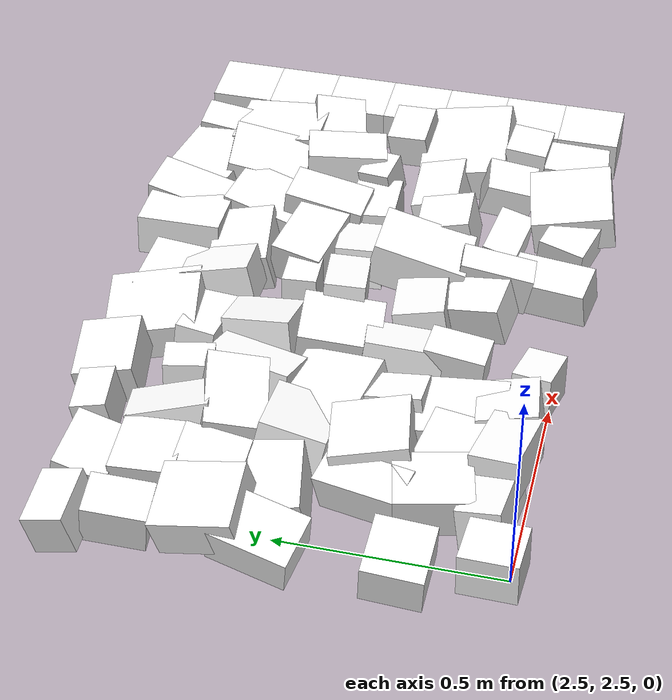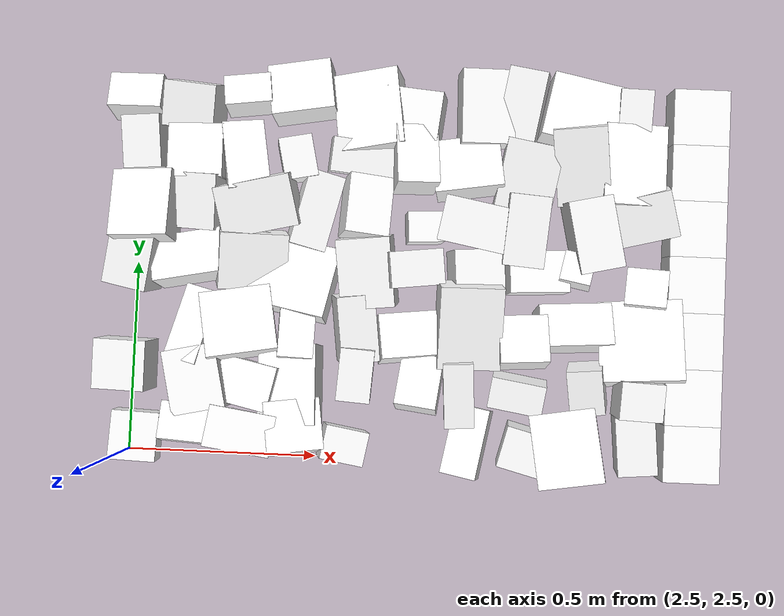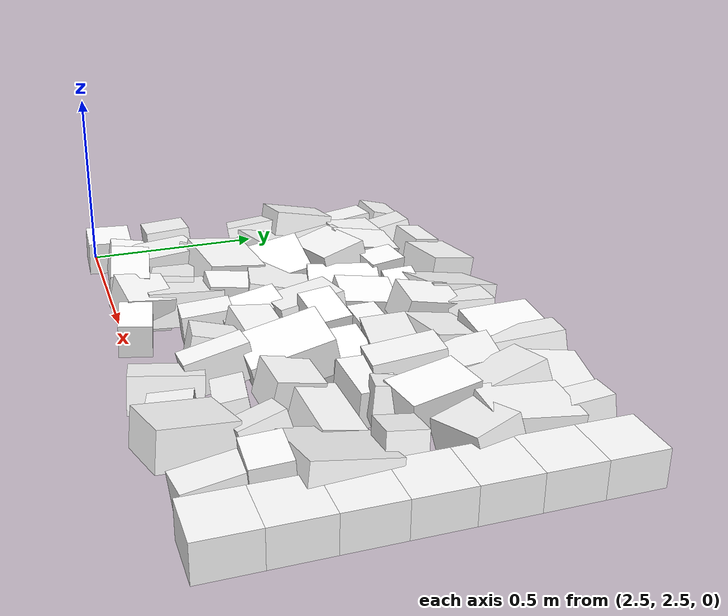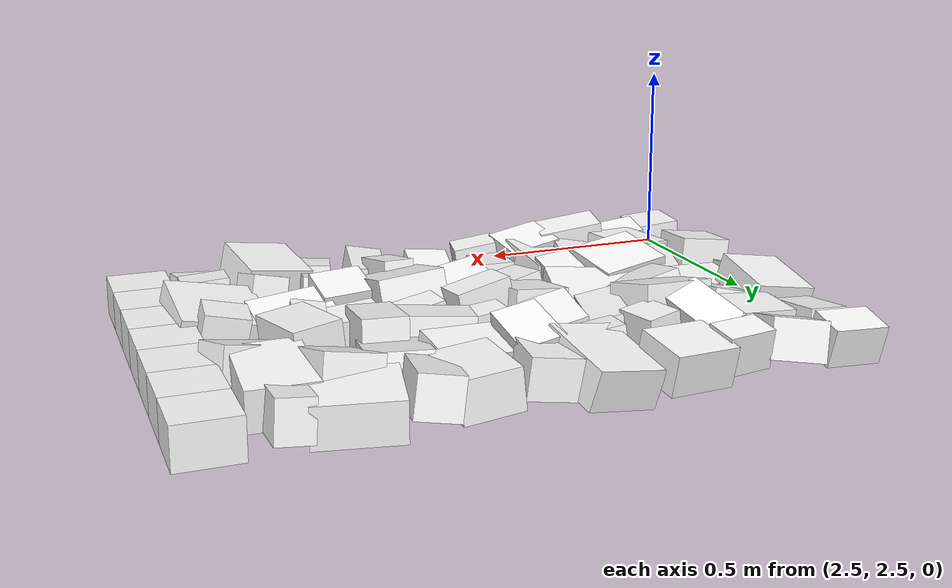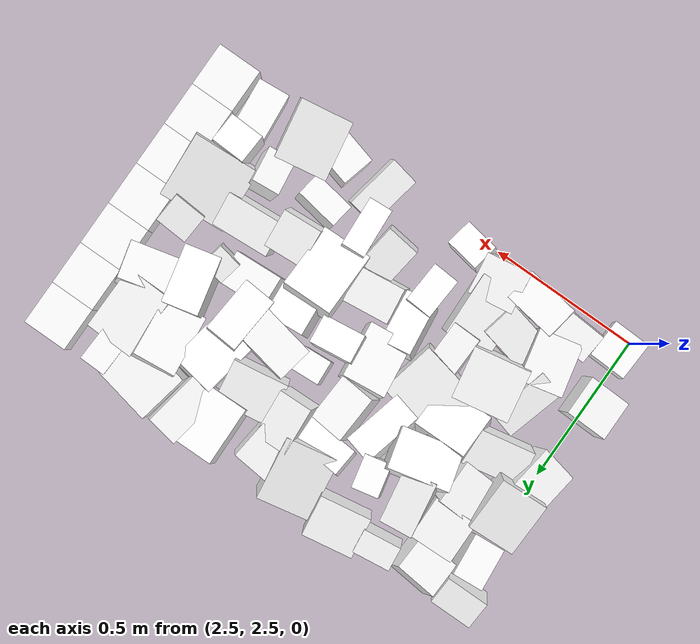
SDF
<sdf version="1.7">
 <world name="default">
  <include><uri>model://sun</uri></include>
  <model name="static_environment">
   <static>true</static>
   <link name="region_670">
    <pose>2.5230041973299553 2.5407276641041387 0.03007151562607162 -0.02771612115756067 0.08115244952845346 -0.045586157902294144</pose>
    <collision name="region_670_collision">
     <geometry><box><size>0.12334864234570181 0.12837354774721688 0.1</size></box></geometry>
     <surface><friction><ode><mu>1.0</mu><mu2>1.0</mu2></ode></friction></surface>
    </collision>
    <visual name="region_670_visual">
     <geometry><box><size>0.12334864234570181 0.12837354774721688 0.1</size></box></geometry>
     <material><ambient>1.0 1.0 1.0 1.0</ambient><diffuse>1.0 1.0 1.0 1.0</diffuse></material>
    </visual>
   </link>
   <link name="region_671">
    <pose>2.678601353264199 2.574103313021914 0.022522607220705905 -0.1710247893614949 0.13148262223736573 -0.08370157097600972</pose>
    <collision name="region_671_collision">
     <geometry><box><size>0.1873389022676368 0.0999135801985966 0.1</size></box></geometry>
     <surface><friction><ode><mu>1.0</mu><mu2>1.0</mu2></ode></friction></surface>
    </collision>
    <visual name="region_671_visual">
     <geometry><box><size>0.1873389022676368 0.0999135801985966 0.1</size></box></geometry>
     <material><ambient>1.0 1.0 1.0 1.0</ambient><diffuse>1.0 1.0 1.0 1.0</diffuse></material>
    </visual>
   </link>
   <link name="region_672">
    <pose>2.7987088824908826 2.563675137534973 0.04936785362661531 -0.1017771875999352 0.1519501084889815 -0.16228498113988532</pose>
    <collision name="region_672_collision">
     <geometry><box><size>0.17538744813419 0.10896776987529247 0.1</size></box></geometry>
     <surface><friction><ode><mu>1.0</mu><mu2>1.0</mu2></ode></friction></surface>
    </collision>
    <visual name="region_672_visual">
     <geometry><box><size>0.17538744813419 0.10896776987529247 0.1</size></box></geometry>
     <material><ambient>1.0 1.0 1.0 1.0</ambient><diffuse>1.0 1.0 1.0 1.0</diffuse></material>
    </visual>
   </link>
   <link name="region_673">
    <pose>2.9388118713547904 2.576937424964707 0.02649111294571038 -0.16275867053532095 0.14849681980210339 0.12765383078057996</pose>
    <collision name="region_673_collision">
     <geometry><box><size>0.14952811331507182 0.1376131994514184 0.1</size></box></geometry>
     <surface><friction><ode><mu>1.0</mu><mu2>1.0</mu2></ode></friction></surface>
    </collision>
    <visual name="region_673_visual">
     <geometry><box><size>0.14952811331507182 0.1376131994514184 0.1</size></box></geometry>
     <material><ambient>1.0 1.0 1.0 1.0</ambient><diffuse>1.0 1.0 1.0 1.0</diffuse></material>
    </visual>
   </link>
   <link name="region_674">
    <pose>3.073009731951437 2.535824064516127 0.011537364478368818 -0.048701120936580466 0.17036177526596347 -0.18590508115624865</pose>
    <collision name="region_674_collision">
     <geometry><box><size>0.11653447453826984 0.0905248681392372 0.1</size></box></geometry>
     <surface><friction><ode><mu>1.0</mu><mu2>1.0</mu2></ode></friction></surface>
    </collision>
    <visual name="region_674_visual">
     <geometry><box><size>0.11653447453826984 0.0905248681392372 0.1</size></box></geometry>
     <material><ambient>1.0 1.0 1.0 1.0</ambient><diffuse>1.0 1.0 1.0 1.0</diffuse></material>
    </visual>
   </link>
   <link name="region_676">
    <pose>3.405662464226313 2.5562541577000943 0.0030614888359957572 -0.056529555046228586 -0.16837221297509358 -0.1759904239606312</pose>
    <collision name="region_676_collision">
     <geometry><box><size>0.09641826687533642 0.1868945103596235 0.1</size></box></geometry>
     <surface><friction><ode><mu>1.0</mu><mu2>1.0</mu2></ode></friction></surface>
    </collision>
    <visual name="region_676_visual">
     <geometry><box><size>0.09641826687533642 0.1868945103596235 0.1</size></box></geometry>
     <material><ambient>1.0 1.0 1.0 1.0</ambient><diffuse>1.0 1.0 1.0 1.0</diffuse></material>
    </visual>
   </link>
   <link name="region_677">
    <pose>3.5709971058600463 2.5383339275366357 0.002811448371991515 0.0937347089489462 -0.046030101639306376 -0.24992779289442402</pose>
    <collision name="region_677_collision">
     <geometry><box><size>0.14416841120564872 0.11242126633868808 0.1</size></box></geometry>
     <surface><friction><ode><mu>1.0</mu><mu2>1.0</mu2></ode></friction></surface>
    </collision>
    <visual name="region_677_visual">
     <geometry><box><size>0.14416841120564872 0.11242126633868808 0.1</size></box></geometry>
     <material><ambient>1.0 1.0 1.0 1.0</ambient><diffuse>1.0 1.0 1.0 1.0</diffuse></material>
    </visual>
   </link>
   <link name="region_678">
    <pose>3.673229318898466 2.548894513365225 0.03412737988538479 -0.1532194229647395 -0.15840608905423859 0.18064755344187589</pose>
    <collision name="region_678_collision">
     <geometry><box><size>0.1745114483545691 0.1960445577811587 0.1</size></box></geometry>
     <surface><friction><ode><mu>1.0</mu><mu2>1.0</mu2></ode></friction></surface>
    </collision>
    <visual name="region_678_visual">
     <geometry><box><size>0.1745114483545691 0.1960445577811587 0.1</size></box></geometry>
     <material><ambient>1.0 1.0 1.0 1.0</ambient><diffuse>1.0 1.0 1.0 1.0</diffuse></material>
    </visual>
   </link>
   <link name="region_679">
    <pose>3.8567958902417976 2.570189985561112 0.0003677861362058277 0.09955445152172027 -0.07221171705816593 0.09502295037232888</pose>
    <collision name="region_679_collision">
     <geometry><box><size>0.10509463845883997 0.15908607597833538 0.1</size></box></geometry>
     <surface><friction><ode><mu>1.0</mu><mu2>1.0</mu2></ode></friction></surface>
    </collision>
    <visual name="region_679_visual">
     <geometry><box><size>0.10509463845883997 0.15908607597833538 0.1</size></box></geometry>
     <material><ambient>1.0 1.0 1.0 1.0</ambient><diffuse>1.0 1.0 1.0 1.0</diffuse></material>
    </visual>
   </link>
   <link name="region_690">
    <pose>2.4817762792449463 2.7282154083744805 0.021135928493909717 0.059697148538746414 -0.12177581197744097 -0.016307826205313347</pose>
    <collision name="region_690_collision">
     <geometry><box><size>0.1432901630814529 0.13337231392042803 0.1</size></box></geometry>
     <surface><friction><ode><mu>1.0</mu><mu2>1.0</mu2></ode></friction></surface>
    </collision>
    <visual name="region_690_visual">
     <geometry><box><size>0.1432901630814529 0.13337231392042803 0.1</size></box></geometry>
     <material><ambient>1.0 1.0 1.0 1.0</ambient><diffuse>1.0 1.0 1.0 1.0</diffuse></material>
    </visual>
   </link>
   <link name="region_691">
    <pose>2.677740696347425 2.696510008952676 0.028737441414663098 -0.0044431856971697825 -0.04015640657507413 0.22144143729206955</pose>
    <collision name="region_691_collision">
     <geometry><box><size>0.14340024546126323 0.17183384239830535 0.1</size></box></geometry>
     <surface><friction><ode><mu>1.0</mu><mu2>1.0</mu2></ode></friction></surface>
    </collision>
    <visual name="region_691_visual">
     <geometry><box><size>0.14340024546126323 0.17183384239830535 0.1</size></box></geometry>
     <material><ambient>1.0 1.0 1.0 1.0</ambient><diffuse>1.0 1.0 1.0 1.0</diffuse></material>
    </visual>
   </link>
   <link name="region_692">
    <pose>2.8151113163533825 2.685468358056144 0.007634141740865675 -0.051249860885396015 -0.1654414298388336 -0.2025245921270601</pose>
    <collision name="region_692_collision">
     <geometry><box><size>0.15494358042405917 0.12228658190733036 0.1</size></box></geometry>
     <surface><friction><ode><mu>1.0</mu><mu2>1.0</mu2></ode></friction></surface>
    </collision>
    <visual name="region_692_visual">
     <geometry><box><size>0.15494358042405917 0.12228658190733036 0.1</size></box></geometry>
     <material><ambient>1.0 1.0 1.0 1.0</ambient><diffuse>1.0 1.0 1.0 1.0</diffuse></material>
    </visual>
   </link>
   <link name="region_693">
    <pose>2.9257424311062623 2.687752762425047 0.006301914128510311 -0.08672786169231161 -0.1171440732571759 0.0454964123627804</pose>
    <collision name="region_693_collision">
     <geometry><box><size>0.15463840681200938 0.21488733294896523 0.1</size></box></geometry>
     <surface><friction><ode><mu>1.0</mu><mu2>1.0</mu2></ode></friction></surface>
    </collision>
    <visual name="region_693_visual">
     <geometry><box><size>0.15463840681200938 0.21488733294896523 0.1</size></box></geometry>
     <material><ambient>1.0 1.0 1.0 1.0</ambient><diffuse>1.0 1.0 1.0 1.0</diffuse></material>
    </visual>
   </link>
   <link name="region_694">
    <pose>3.100364973107835 2.7260767132276915 0.014135029921735865 0.08185346107121372 0.01842337183518261 -0.06647757570117374</pose>
    <collision name="region_694_collision">
     <geometry><box><size>0.09048984331780428 0.14124593544706218 0.1</size></box></geometry>
     <surface><friction><ode><mu>1.0</mu><mu2>1.0</mu2></ode></friction></surface>
    </collision>
    <visual name="region_694_visual">
     <geometry><box><size>0.09048984331780428 0.14124593544706218 0.1</size></box></geometry>
     <material><ambient>1.0 1.0 1.0 1.0</ambient><diffuse>1.0 1.0 1.0 1.0</diffuse></material>
    </visual>
   </link>
   <link name="region_695">
    <pose>3.2726134061187757 2.7066721235427034 0.023132864552753887 -0.2222855325430187 -0.08153079050962764 -0.11814036472478945</pose>
    <collision name="region_695_collision">
     <geometry><box><size>0.1113451831152201 0.1408866050441963 0.1</size></box></geometry>
     <surface><friction><ode><mu>1.0</mu><mu2>1.0</mu2></ode></friction></surface>
    </collision>
    <visual name="region_695_visual">
     <geometry><box><size>0.1113451831152201 0.1408866050441963 0.1</size></box></geometry>
     <material><ambient>1.0 1.0 1.0 1.0</ambient><diffuse>1.0 1.0 1.0 1.0</diffuse></material>
    </visual>
   </link>
   <link name="region_696">
    <pose>3.3767112322672075 2.6896024929716216 0.03384056690523978 0.19106070988523471 -0.017167056306637007 0.06476706047062847</pose>
    <collision name="region_696_collision">
     <geometry><box><size>0.079389759937939 0.17269379841136215 0.1</size></box></geometry>
     <surface><friction><ode><mu>1.0</mu><mu2>1.0</mu2></ode></friction></surface>
    </collision>
    <visual name="region_696_visual">
     <geometry><box><size>0.079389759937939 0.17269379841136215 0.1</size></box></geometry>
     <material><ambient>1.0 1.0 1.0 1.0</ambient><diffuse>1.0 1.0 1.0 1.0</diffuse></material>
    </visual>
   </link>
   <link name="region_697">
    <pose>3.5366981047571038 2.690013005162175 0.0026703227207364403 0.16911359634627193 -0.0827285906326814 -0.15454208031854372</pose>
    <collision name="region_697_collision">
     <geometry><box><size>0.14602076356138285 0.08336024495984139 0.1</size></box></geometry>
     <surface><friction><ode><mu>1.0</mu><mu2>1.0</mu2></ode></friction></surface>
    </collision>
    <visual name="region_697_visual">
     <geometry><box><size>0.14602076356138285 0.08336024495984139 0.1</size></box></geometry>
     <material><ambient>1.0 1.0 1.0 1.0</ambient><diffuse>1.0 1.0 1.0 1.0</diffuse></material>
    </visual>
   </link>
   <link name="region_698">
    <pose>3.71977062184781 2.713744903023099 0.029895227291357414 0.22732731631414727 -0.22741896118083677 0.10402390547665696</pose>
    <collision name="region_698_collision">
     <geometry><box><size>0.09324946934065742 0.12145212521597436 0.1</size></box></geometry>
     <surface><friction><ode><mu>1.0</mu><mu2>1.0</mu2></ode></friction></surface>
    </collision>
    <visual name="region_698_visual">
     <geometry><box><size>0.09324946934065742 0.12145212521597436 0.1</size></box></geometry>
     <material><ambient>1.0 1.0 1.0 1.0</ambient><diffuse>1.0 1.0 1.0 1.0</diffuse></material>
    </visual>
   </link>
   <link name="region_699">
    <pose>3.856566661936615 2.688840742518906 0.03406423628871694 0.0724702909006088 0.06542830347315998 -0.04307466371064178</pose>
    <collision name="region_699_collision">
     <geometry><box><size>0.11750113638421371 0.10086853191157587 0.1</size></box></geometry>
     <surface><friction><ode><mu>1.0</mu><mu2>1.0</mu2></ode></friction></surface>
    </collision>
    <visual name="region_699_visual">
     <geometry><box><size>0.11750113638421371 0.10086853191157587 0.1</size></box></geometry>
     <material><ambient>1.0 1.0 1.0 1.0</ambient><diffuse>1.0 1.0 1.0 1.0</diffuse></material>
    </visual>
   </link>
   <link name="region_711">
    <pose>2.669742738892584 2.8358012083615116 0.01807858101822965 -0.09446504975960635 -0.19606230463737495 -0.24822915423656977</pose>
    <collision name="region_711_collision">
     <geometry><box><size>0.09163506559061647 0.20066032310213747 0.1</size></box></geometry>
     <surface><friction><ode><mu>1.0</mu><mu2>1.0</mu2></ode></friction></surface>
    </collision>
    <visual name="region_711_visual">
     <geometry><box><size>0.09163506559061647 0.20066032310213747 0.1</size></box></geometry>
     <material><ambient>1.0 1.0 1.0 1.0</ambient><diffuse>1.0 1.0 1.0 1.0</diffuse></material>
    </visual>
   </link>
   <link name="region_712">
    <pose>2.7844194658840573 2.846922195581523 0.03718342538213273 -0.17368183305182733 0.1143094807454913 0.17385939152783192</pose>
    <collision name="region_712_collision">
     <geometry><box><size>0.18745238602674333 0.17353952694805272 0.1</size></box></geometry>
     <surface><friction><ode><mu>1.0</mu><mu2>1.0</mu2></ode></friction></surface>
    </collision>
    <visual name="region_712_visual">
     <geometry><box><size>0.18745238602674333 0.17353952694805272 0.1</size></box></geometry>
     <material><ambient>1.0 1.0 1.0 1.0</ambient><diffuse>1.0 1.0 1.0 1.0</diffuse></material>
    </visual>
   </link>
   <link name="region_713">
    <pose>2.9355125706060834 2.8570945999355524 0.011151941069798749 -0.1428098778377574 0.136296727476653 -0.036450475443789154</pose>
    <collision name="region_713_collision">
     <geometry><box><size>0.09440581683916736 0.2008854527763042 0.1</size></box></geometry>
     <surface><friction><ode><mu>1.0</mu><mu2>1.0</mu2></ode></friction></surface>
    </collision>
    <visual name="region_713_visual">
     <geometry><box><size>0.09440581683916736 0.2008854527763042 0.1</size></box></geometry>
     <material><ambient>1.0 1.0 1.0 1.0</ambient><diffuse>1.0 1.0 1.0 1.0</diffuse></material>
    </visual>
   </link>
   <link name="region_714">
    <pose>3.094219441488109 2.849263146962797 0.010464134261957659 0.13859044630560535 0.19737517504694174 0.1445501570756017</pose>
    <collision name="region_714_collision">
     <geometry><box><size>0.10266557887821288 0.18035521456239564 0.1</size></box></geometry>
     <surface><friction><ode><mu>1.0</mu><mu2>1.0</mu2></ode></friction></surface>
    </collision>
    <visual name="region_714_visual">
     <geometry><box><size>0.10266557887821288 0.18035521456239564 0.1</size></box></geometry>
     <material><ambient>1.0 1.0 1.0 1.0</ambient><diffuse>1.0 1.0 1.0 1.0</diffuse></material>
    </visual>
   </link>
   <link name="region_715">
    <pose>3.2341331461092846 2.8291153023993827 0.022408942250383347 -0.16932215167052794 0.1488834569210959 0.11076774045890347</pose>
    <collision name="region_715_collision">
     <geometry><box><size>0.15620964040847915 0.11961238524288338 0.1</size></box></geometry>
     <surface><friction><ode><mu>1.0</mu><mu2>1.0</mu2></ode></friction></surface>
    </collision>
    <visual name="region_715_visual">
     <geometry><box><size>0.15620964040847915 0.11961238524288338 0.1</size></box></geometry>
     <material><ambient>1.0 1.0 1.0 1.0</ambient><diffuse>1.0 1.0 1.0 1.0</diffuse></material>
    </visual>
   </link>
   <link name="region_716">
    <pose>3.396621974827541 2.868917581914124 0.04732540918515971 0.23363357347500296 0.09381526233920023 0.011476494126860526</pose>
    <collision name="region_716_collision">
     <geometry><box><size>0.16879758322384925 0.2207504471953721 0.1</size></box></geometry>
     <surface><friction><ode><mu>1.0</mu><mu2>1.0</mu2></ode></friction></surface>
    </collision>
    <visual name="region_716_visual">
     <geometry><box><size>0.16879758322384925 0.2207504471953721 0.1</size></box></geometry>
     <material><ambient>1.0 1.0 1.0 1.0</ambient><diffuse>1.0 1.0 1.0 1.0</diffuse></material>
    </visual>
   </link>
   <link name="region_717">
    <pose>3.541918223362889 2.8282312720373737 0.03271838179989248 -0.22705836571387017 0.04632897633086469 0.06275606023422048</pose>
    <collision name="region_717_collision">
     <geometry><box><size>0.13132489622592958 0.12737731855548268 0.1</size></box></geometry>
     <surface><friction><ode><mu>1.0</mu><mu2>1.0</mu2></ode></friction></surface>
    </collision>
    <visual name="region_717_visual">
     <geometry><box><size>0.13132489622592958 0.12737731855548268 0.1</size></box></geometry>
     <material><ambient>1.0 1.0 1.0 1.0</ambient><diffuse>1.0 1.0 1.0 1.0</diffuse></material>
    </visual>
   </link>
   <link name="region_718">
    <pose>3.680721148802462 2.8712309632124113 0.004692968438595496 -0.2296833178997852 0.09224480896452414 0.06289721157767342</pose>
    <collision name="region_718_collision">
     <geometry><box><size>0.1970833792584313 0.11422613539522321 0.1</size></box></geometry>
     <surface><friction><ode><mu>1.0</mu><mu2>1.0</mu2></ode></friction></surface>
    </collision>
    <visual name="region_718_visual">
     <geometry><box><size>0.1970833792584313 0.11422613539522321 0.1</size></box></geometry>
     <material><ambient>1.0 1.0 1.0 1.0</ambient><diffuse>1.0 1.0 1.0 1.0</diffuse></material>
    </visual>
   </link>
   <link name="region_719">
    <pose>3.8631333702472483 2.838510616507357 0.016463312297242207 -0.184382736913409 -0.1991113184299133 0.07446851481429434</pose>
    <collision name="region_719_collision">
     <geometry><box><size>0.22248639287737523 0.21583296270649907 0.1</size></box></geometry>
     <surface><friction><ode><mu>1.0</mu><mu2>1.0</mu2></ode></friction></surface>
    </collision>
    <visual name="region_719_visual">
     <geometry><box><size>0.22248639287737523 0.21583296270649907 0.1</size></box></geometry>
     <material><ambient>1.0 1.0 1.0 1.0</ambient><diffuse>1.0 1.0 1.0 1.0</diffuse></material>
    </visual>
   </link>
   <link name="region_730">
    <pose>2.4953275721910266 3.0260978791851505 0.009583120205268742 0.16163870731265223 -0.1979402900696558 -0.19799033910217223</pose>
    <collision name="region_730_collision">
     <geometry><box><size>0.12761081211112277 0.1804533299706895 0.1</size></box></geometry>
     <surface><friction><ode><mu>1.0</mu><mu2>1.0</mu2></ode></friction></surface>
    </collision>
    <visual name="region_730_visual">
     <geometry><box><size>0.12761081211112277 0.1804533299706895 0.1</size></box></geometry>
     <material><ambient>1.0 1.0 1.0 1.0</ambient><diffuse>1.0 1.0 1.0 1.0</diffuse></material>
    </visual>
   </link>
   <link name="region_731">
    <pose>2.642743418255286 3.0189789217831353 0.006673476627234421 -0.1883810123656049 -0.08657952093668969 0.18779039132295355</pose>
    <collision name="region_731_collision">
     <geometry><box><size>0.1960217983562993 0.12015958211907098 0.1</size></box></geometry>
     <surface><friction><ode><mu>1.0</mu><mu2>1.0</mu2></ode></friction></surface>
    </collision>
    <visual name="region_731_visual">
     <geometry><box><size>0.1960217983562993 0.12015958211907098 0.1</size></box></geometry>
     <material><ambient>1.0 1.0 1.0 1.0</ambient><diffuse>1.0 1.0 1.0 1.0</diffuse></material>
    </visual>
   </link>
   <link name="region_732">
    <pose>2.8079884724696624 3.021517527052657 0.01612498302096273 0.19772305356917796 0.22930609426431536 0.010353034706623965</pose>
    <collision name="region_732_collision">
     <geometry><box><size>0.18170658604491727 0.15080312876620497 0.1</size></box></geometry>
     <surface><friction><ode><mu>1.0</mu><mu2>1.0</mu2></ode></friction></surface>
    </collision>
    <visual name="region_732_visual">
     <geometry><box><size>0.18170658604491727 0.15080312876620497 0.1</size></box></geometry>
     <material><ambient>1.0 1.0 1.0 1.0</ambient><diffuse>1.0 1.0 1.0 1.0</diffuse></material>
    </visual>
   </link>
   <link name="region_733">
    <pose>2.9228958244296335 2.976596719026709 0.0010518540761541185 -0.17475453704338995 -0.05593179417722194 -0.20108438531232758</pose>
    <collision name="region_733_collision">
     <geometry><box><size>0.2168735377938434 0.19083801911722684 0.1</size></box></geometry>
     <surface><friction><ode><mu>1.0</mu><mu2>1.0</mu2></ode></friction></surface>
    </collision>
    <visual name="region_733_visual">
     <geometry><box><size>0.2168735377938434 0.19083801911722684 0.1</size></box></geometry>
     <material><ambient>1.0 1.0 1.0 1.0</ambient><diffuse>1.0 1.0 1.0 1.0</diffuse></material>
    </visual>
   </link>
   <link name="region_734">
    <pose>3.1203383428841427 2.9996607357856293 0.024216130562027878 0.12389662543616714 -0.10282847280876911 0.10611802579087332</pose>
    <collision name="region_734_collision">
     <geometry><box><size>0.14537411804225825 0.18722703086210254 0.1</size></box></geometry>
     <surface><friction><ode><mu>1.0</mu><mu2>1.0</mu2></ode></friction></surface>
    </collision>
    <visual name="region_734_visual">
     <geometry><box><size>0.14537411804225825 0.18722703086210254 0.1</size></box></geometry>
     <material><ambient>1.0 1.0 1.0 1.0</ambient><diffuse>1.0 1.0 1.0 1.0</diffuse></material>
    </visual>
   </link>
   <link name="region_735">
    <pose>3.245094937287538 3.01386797654767 0.04961649247659511 0.05720244683321696 0.19137880585208894 0.1251203473136301</pose>
    <collision name="region_735_collision">
     <geometry><box><size>0.14406348436075736 0.09553213312884268 0.1</size></box></geometry>
     <surface><friction><ode><mu>1.0</mu><mu2>1.0</mu2></ode></friction></surface>
    </collision>
    <visual name="region_735_visual">
     <geometry><box><size>0.14406348436075736 0.09553213312884268 0.1</size></box></geometry>
     <material><ambient>1.0 1.0 1.0 1.0</ambient><diffuse>1.0 1.0 1.0 1.0</diffuse></material>
    </visual>
   </link>
   <link name="region_736">
    <pose>3.4116511347709846 3.0148565800547873 0.016604508971498434 0.0020852423983048762 0.18915146218133388 0.080249171184342</pose>
    <collision name="region_736_collision">
     <geometry><box><size>0.1350113409133108 0.11228576863426522 0.1</size></box></geometry>
     <surface><friction><ode><mu>1.0</mu><mu2>1.0</mu2></ode></friction></surface>
    </collision>
    <visual name="region_736_visual">
     <geometry><box><size>0.1350113409133108 0.11228576863426522 0.1</size></box></geometry>
     <material><ambient>1.0 1.0 1.0 1.0</ambient><diffuse>1.0 1.0 1.0 1.0</diffuse></material>
    </visual>
   </link>
   <link name="region_737">
    <pose>3.576372938844644 3.0161044844012084 0.011204991225030459 -0.04905302004328621 0.08014773181191015 0.053677464672373</pose>
    <collision name="region_737_collision">
     <geometry><box><size>0.16075568002329338 0.11083880059381111 0.1</size></box></geometry>
     <surface><friction><ode><mu>1.0</mu><mu2>1.0</mu2></ode></friction></surface>
    </collision>
    <visual name="region_737_visual">
     <geometry><box><size>0.16075568002329338 0.11083880059381111 0.1</size></box></geometry>
     <material><ambient>1.0 1.0 1.0 1.0</ambient><diffuse>1.0 1.0 1.0 1.0</diffuse></material>
    </visual>
   </link>
   <link name="region_738">
    <pose>3.6821715258997223 3.025211121173008 0.04017369169035205 -0.10198202480178442 -0.14897861290540237 -0.1978290231569504</pose>
    <collision name="region_738_collision">
     <geometry><box><size>0.08251137428061393 0.0797373742661293 0.1</size></box></geometry>
     <surface><friction><ode><mu>1.0</mu><mu2>1.0</mu2></ode></friction></surface>
    </collision>
    <visual name="region_738_visual">
     <geometry><box><size>0.08251137428061393 0.0797373742661293 0.1</size></box></geometry>
     <material><ambient>1.0 1.0 1.0 1.0</ambient><diffuse>1.0 1.0 1.0 1.0</diffuse></material>
    </visual>
   </link>
   <link name="region_739">
    <pose>3.868101893422729 2.9822528216676076 0.042057192157627155 -0.08751520909932842 -0.2054077395813499 -0.06584987202222609</pose>
    <collision name="region_739_collision">
     <geometry><box><size>0.10942786026237826 0.09858133595441183 0.1</size></box></geometry>
     <surface><friction><ode><mu>1.0</mu><mu2>1.0</mu2></ode></friction></surface>
    </collision>
    <visual name="region_739_visual">
     <geometry><box><size>0.10942786026237826 0.09858133595441183 0.1</size></box></geometry>
     <material><ambient>1.0 1.0 1.0 1.0</ambient><diffuse>1.0 1.0 1.0 1.0</diffuse></material>
    </visual>
   </link>
   <link name="region_750">
    <pose>2.5220811405984476 3.1490909986947426 0.04032999475264769 -0.20244241653278883 -0.15746092102529113 0.03730118321672643</pose>
    <collision name="region_750_collision">
     <geometry><box><size>0.16280859109524162 0.18202787009229426 0.1</size></box></geometry>
     <surface><friction><ode><mu>1.0</mu><mu2>1.0</mu2></ode></friction></surface>
    </collision>
    <visual name="region_750_visual">
     <geometry><box><size>0.16280859109524162 0.18202787009229426 0.1</size></box></geometry>
     <material><ambient>1.0 1.0 1.0 1.0</ambient><diffuse>1.0 1.0 1.0 1.0</diffuse></material>
    </visual>
   </link>
   <link name="region_751">
    <pose>2.6408110327668357 3.1764442730271734 0.010896385537850918 0.15689922816788465 -0.2270024822287277 -0.055367682913804006</pose>
    <collision name="region_751_collision">
     <geometry><box><size>0.1683896563766561 0.14880323451555583 0.1</size></box></geometry>
     <surface><friction><ode><mu>1.0</mu><mu2>1.0</mu2></ode></friction></surface>
    </collision>
    <visual name="region_751_visual">
     <geometry><box><size>0.1683896563766561 0.14880323451555583 0.1</size></box></geometry>
     <material><ambient>1.0 1.0 1.0 1.0</ambient><diffuse>1.0 1.0 1.0 1.0</diffuse></material>
    </visual>
   </link>
   <link name="region_752">
    <pose>2.8240807137905426 3.1674840313937587 0.04739207798680097 0.2001629081020065 -0.09020141062671538 0.22228077742198588</pose>
    <collision name="region_752_collision">
     <geometry><box><size>0.2062125330085176 0.13803825561933603 0.1</size></box></geometry>
     <surface><friction><ode><mu>1.0</mu><mu2>1.0</mu2></ode></friction></surface>
    </collision>
    <visual name="region_752_visual">
     <geometry><box><size>0.2062125330085176 0.13803825561933603 0.1</size></box></geometry>
     <material><ambient>1.0 1.0 1.0 1.0</ambient><diffuse>1.0 1.0 1.0 1.0</diffuse></material>
    </visual>
   </link>
   <link name="region_753">
    <pose>2.9712707948169177 3.1603563377503203 0.007431782371685553 -0.006198594016613379 0.22870528701405318 -0.2394187911773819</pose>
    <collision name="region_753_collision">
     <geometry><box><size>0.09867260434872197 0.20604420142939686 0.1</size></box></geometry>
     <surface><friction><ode><mu>1.0</mu><mu2>1.0</mu2></ode></friction></surface>
    </collision>
    <visual name="region_753_visual">
     <geometry><box><size>0.09867260434872197 0.20604420142939686 0.1</size></box></geometry>
     <material><ambient>1.0 1.0 1.0 1.0</ambient><diffuse>1.0 1.0 1.0 1.0</diffuse></material>
    </visual>
   </link>
   <link name="region_754">
    <pose>3.108930336588818 3.1727906091073166 0.015566325191359415 -0.14955496608567376 0.2432502772280738 -0.08768889046202555</pose>
    <collision name="region_754_collision">
     <geometry><box><size>0.1196575123072973 0.16125288287606282 0.1</size></box></geometry>
     <surface><friction><ode><mu>1.0</mu><mu2>1.0</mu2></ode></friction></surface>
    </collision>
    <visual name="region_754_visual">
     <geometry><box><size>0.1196575123072973 0.16125288287606282 0.1</size></box></geometry>
     <material><ambient>1.0 1.0 1.0 1.0</ambient><diffuse>1.0 1.0 1.0 1.0</diffuse></material>
    </visual>
   </link>
   <link name="region_755">
    <pose>3.2690365576365936 3.1244349146500614 0.017952466237990457 -0.00967238399611614 0.0918501455570866 0.0639723911939728</pose>
    <collision name="region_755_collision">
     <geometry><box><size>0.0957018746868213 0.08132607593350327 0.1</size></box></geometry>
     <surface><friction><ode><mu>1.0</mu><mu2>1.0</mu2></ode></friction></surface>
    </collision>
    <visual name="region_755_visual">
     <geometry><box><size>0.0957018746868213 0.08132607593350327 0.1</size></box></geometry>
     <material><ambient>1.0 1.0 1.0 1.0</ambient><diffuse>1.0 1.0 1.0 1.0</diffuse></material>
    </visual>
   </link>
   <link name="region_756">
    <pose>3.4239096144999497 3.136382784750808 0.032056994856804265 0.094555515151587 -0.06579888782152665 -0.1906559906859866</pose>
    <collision name="region_756_collision">
     <geometry><box><size>0.2176469716819465 0.12240035722539587 0.1</size></box></geometry>
     <surface><friction><ode><mu>1.0</mu><mu2>1.0</mu2></ode></friction></surface>
    </collision>
    <visual name="region_756_visual">
     <geometry><box><size>0.2176469716819465 0.12240035722539587 0.1</size></box></geometry>
     <material><ambient>1.0 1.0 1.0 1.0</ambient><diffuse>1.0 1.0 1.0 1.0</diffuse></material>
    </visual>
   </link>
   <link name="region_757">
    <pose>3.540341624711079 3.1284219518984853 0.043312123933492486 0.1276517112217161 -0.015557314781201259 -0.07690184784680304</pose>
    <collision name="region_757_collision">
     <geometry><box><size>0.10977520256898866 0.19059361364421284 0.1</size></box></geometry>
     <surface><friction><ode><mu>1.0</mu><mu2>1.0</mu2></ode></friction></surface>
    </collision>
    <visual name="region_757_visual">
     <geometry><box><size>0.10977520256898866 0.19059361364421284 0.1</size></box></geometry>
     <material><ambient>1.0 1.0 1.0 1.0</ambient><diffuse>1.0 1.0 1.0 1.0</diffuse></material>
    </visual>
   </link>
   <link name="region_758">
    <pose>3.717826625899539 3.1225377415710036 0.048996747954092916 0.0565577781041367 0.08645475745543346 0.22923949075307787</pose>
    <collision name="region_758_collision">
     <geometry><box><size>0.12157037573992212 0.19278964178814897 0.1</size></box></geometry>
     <surface><friction><ode><mu>1.0</mu><mu2>1.0</mu2></ode></friction></surface>
    </collision>
    <visual name="region_758_visual">
     <geometry><box><size>0.12157037573992212 0.19278964178814897 0.1</size></box></geometry>
     <material><ambient>1.0 1.0 1.0 1.0</ambient><diffuse>1.0 1.0 1.0 1.0</diffuse></material>
    </visual>
   </link>
   <link name="region_759">
    <pose>3.8524355365744736 3.176641879698878 0.02106424544303778 0.1858312431452443 -0.2037443431406885 0.24488048536017581</pose>
    <collision name="region_759_collision">
     <geometry><box><size>0.1782236694360762 0.12576721341815122 0.1</size></box></geometry>
     <surface><friction><ode><mu>1.0</mu><mu2>1.0</mu2></ode></friction></surface>
    </collision>
    <visual name="region_759_visual">
     <geometry><box><size>0.1782236694360762 0.12576721341815122 0.1</size></box></geometry>
     <material><ambient>1.0 1.0 1.0 1.0</ambient><diffuse>1.0 1.0 1.0 1.0</diffuse></material>
    </visual>
   </link>
   <link name="region_770">
    <pose>2.504910889893562 3.3294653570573254 0.00347540292771365 0.0977969181690796 -0.07428949310150029 0.07107036237227737</pose>
    <collision name="region_770_collision">
     <geometry><box><size>0.10357108637007105 0.14131026779554792 0.1</size></box></geometry>
     <surface><friction><ode><mu>1.0</mu><mu2>1.0</mu2></ode></friction></surface>
    </collision>
    <visual name="region_770_visual">
     <geometry><box><size>0.10357108637007105 0.14131026779554792 0.1</size></box></geometry>
     <material><ambient>1.0 1.0 1.0 1.0</ambient><diffuse>1.0 1.0 1.0 1.0</diffuse></material>
    </visual>
   </link>
   <link name="region_771">
    <pose>2.652479658827019 3.3025475356581637 0.016723237944088882 -0.05382512926496702 -0.05750281760204756 0.02316264964654019</pose>
    <collision name="region_771_collision">
     <geometry><box><size>0.148385863525503 0.14348411196234698 0.1</size></box></geometry>
     <surface><friction><ode><mu>1.0</mu><mu2>1.0</mu2></ode></friction></surface>
    </collision>
    <visual name="region_771_visual">
     <geometry><box><size>0.148385863525503 0.14348411196234698 0.1</size></box></geometry>
     <material><ambient>1.0 1.0 1.0 1.0</ambient><diffuse>1.0 1.0 1.0 1.0</diffuse></material>
    </visual>
   </link>
   <link name="region_772">
    <pose>2.779311164900596 3.2863730751868285 0.028769577589475116 -0.2382877484893529 0.2136128412603852 0.1348818262681622</pose>
    <collision name="region_772_collision">
     <geometry><box><size>0.11107265786984542 0.18895392311250236 0.1</size></box></geometry>
     <surface><friction><ode><mu>1.0</mu><mu2>1.0</mu2></ode></friction></surface>
    </collision>
    <visual name="region_772_visual">
     <geometry><box><size>0.11107265786984542 0.18895392311250236 0.1</size></box></geometry>
     <material><ambient>1.0 1.0 1.0 1.0</ambient><diffuse>1.0 1.0 1.0 1.0</diffuse></material>
    </visual>
   </link>
   <link name="region_773">
    <pose>2.920603809661059 3.2955472489016087 0.026047819962751552 0.017835581170338233 0.12552623795930418 0.21976120109194552</pose>
    <collision name="region_773_collision">
     <geometry><box><size>0.089172075726055 0.11236868915907194 0.1</size></box></geometry>
     <surface><friction><ode><mu>1.0</mu><mu2>1.0</mu2></ode></friction></surface>
    </collision>
    <visual name="region_773_visual">
     <geometry><box><size>0.089172075726055 0.11236868915907194 0.1</size></box></geometry>
     <material><ambient>1.0 1.0 1.0 1.0</ambient><diffuse>1.0 1.0 1.0 1.0</diffuse></material>
    </visual>
   </link>
   <link name="region_774">
    <pose>3.094057763470423 3.308280571583391 0.0040080920467153724 0.08055746271692282 0.15187223294358881 -0.07828071263059128</pose>
    <collision name="region_774_collision">
     <geometry><box><size>0.1751583351545372 0.09200691939694212 0.1</size></box></geometry>
     <surface><friction><ode><mu>1.0</mu><mu2>1.0</mu2></ode></friction></surface>
    </collision>
    <visual name="region_774_visual">
     <geometry><box><size>0.1751583351545372 0.09200691939694212 0.1</size></box></geometry>
     <material><ambient>1.0 1.0 1.0 1.0</ambient><diffuse>1.0 1.0 1.0 1.0</diffuse></material>
    </visual>
   </link>
   <link name="region_775">
    <pose>3.23614112773976 3.3061538003156796 0.040113930011472856 -0.23031606954261225 0.16933087152497822 0.035880039310220824</pose>
    <collision name="region_775_collision">
     <geometry><box><size>0.11271153118790748 0.16354173542608508 0.1</size></box></geometry>
     <surface><friction><ode><mu>1.0</mu><mu2>1.0</mu2></ode></friction></surface>
    </collision>
    <visual name="region_775_visual">
     <geometry><box><size>0.11271153118790748 0.16354173542608508 0.1</size></box></geometry>
     <material><ambient>1.0 1.0 1.0 1.0</ambient><diffuse>1.0 1.0 1.0 1.0</diffuse></material>
    </visual>
   </link>
   <link name="region_776">
    <pose>3.380200294861303 3.2926634883088957 0.009565123874043341 -0.18596649579895908 -0.06294922337010667 0.14893738762708475</pose>
    <collision name="region_776_collision">
     <geometry><box><size>0.18445547737841322 0.14218660687171883 0.1</size></box></geometry>
     <surface><friction><ode><mu>1.0</mu><mu2>1.0</mu2></ode></friction></surface>
    </collision>
    <visual name="region_776_visual">
     <geometry><box><size>0.18445547737841322 0.14218660687171883 0.1</size></box></geometry>
     <material><ambient>1.0 1.0 1.0 1.0</ambient><diffuse>1.0 1.0 1.0 1.0</diffuse></material>
    </visual>
   </link>
   <link name="region_777">
    <pose>3.5432763826708937 3.272536784974602 0.008737595641187396 0.18542983258824752 -0.005827291403545876 -0.1703046868528078</pose>
    <collision name="region_777_collision">
     <geometry><box><size>0.1517831255193207 0.19928754355497638 0.1</size></box></geometry>
     <surface><friction><ode><mu>1.0</mu><mu2>1.0</mu2></ode></friction></surface>
    </collision>
    <visual name="region_777_visual">
     <geometry><box><size>0.1517831255193207 0.19928754355497638 0.1</size></box></geometry>
     <material><ambient>1.0 1.0 1.0 1.0</ambient><diffuse>1.0 1.0 1.0 1.0</diffuse></material>
    </visual>
   </link>
   <link name="region_778">
    <pose>3.6881500339386912 3.312176150826491 0.029500485928557092 0.2422444170500776 -0.18839107463732857 0.08379467797853579</pose>
    <collision name="region_778_collision">
     <geometry><box><size>0.14254087492111883 0.2063466974257156 0.1</size></box></geometry>
     <surface><friction><ode><mu>1.0</mu><mu2>1.0</mu2></ode></friction></surface>
    </collision>
    <visual name="region_778_visual">
     <geometry><box><size>0.14254087492111883 0.2063466974257156 0.1</size></box></geometry>
     <material><ambient>1.0 1.0 1.0 1.0</ambient><diffuse>1.0 1.0 1.0 1.0</diffuse></material>
    </visual>
   </link>
   <link name="region_779">
    <pose>3.823296007158027 3.308434208473781 0.02045919010600509 -0.11045264472604571 0.01120750192443698 -0.031510478215732884</pose>
    <collision name="region_779_collision">
     <geometry><box><size>0.16328882734409597 0.2198569274953671 0.1</size></box></geometry>
     <surface><friction><ode><mu>1.0</mu><mu2>1.0</mu2></ode></friction></surface>
    </collision>
    <visual name="region_779_visual">
     <geometry><box><size>0.16328882734409597 0.2198569274953671 0.1</size></box></geometry>
     <material><ambient>1.0 1.0 1.0 1.0</ambient><diffuse>1.0 1.0 1.0 1.0</diffuse></material>
    </visual>
   </link>
   <link name="region_790">
    <pose>2.481207955679414 3.4506475778645935 0.0028364065632376038 -0.24376443401194453 -0.046146636884858705 -0.00042533108870201897</pose>
    <collision name="region_790_collision">
     <geometry><box><size>0.14411918202419116 0.0951580346812293 0.1</size></box></geometry>
     <surface><friction><ode><mu>1.0</mu><mu2>1.0</mu2></ode></friction></surface>
    </collision>
    <visual name="region_790_visual">
     <geometry><box><size>0.14411918202419116 0.0951580346812293 0.1</size></box></geometry>
     <material><ambient>1.0 1.0 1.0 1.0</ambient><diffuse>1.0 1.0 1.0 1.0</diffuse></material>
    </visual>
   </link>
   <link name="region_791">
    <pose>2.634863078510457 3.433851674640909 0.013960810067644498 0.23143152231506164 -0.16714871402306852 -0.11651124826682491</pose>
    <collision name="region_791_collision">
     <geometry><box><size>0.14606503036597662 0.12143953529543527 0.1</size></box></geometry>
     <surface><friction><ode><mu>1.0</mu><mu2>1.0</mu2></ode></friction></surface>
    </collision>
    <visual name="region_791_visual">
     <geometry><box><size>0.14606503036597662 0.12143953529543527 0.1</size></box></geometry>
     <material><ambient>1.0 1.0 1.0 1.0</ambient><diffuse>1.0 1.0 1.0 1.0</diffuse></material>
    </visual>
   </link>
   <link name="region_792">
    <pose>2.7833516581859774 3.4645047414985295 0.023583846243159567 -0.1758796008186257 0.023567789472466072 0.1292995509400064</pose>
    <collision name="region_792_collision">
     <geometry><box><size>0.12519256766807113 0.08105397803245769 0.1</size></box></geometry>
     <surface><friction><ode><mu>1.0</mu><mu2>1.0</mu2></ode></friction></surface>
    </collision>
    <visual name="region_792_visual">
     <geometry><box><size>0.12519256766807113 0.08105397803245769 0.1</size></box></geometry>
     <material><ambient>1.0 1.0 1.0 1.0</ambient><diffuse>1.0 1.0 1.0 1.0</diffuse></material>
    </visual>
   </link>
   <link name="region_793">
    <pose>2.92764419549552 3.4789674394133345 0.01821265367485982 -0.17617211938048494 -0.042587883995707954 0.16066747863237135</pose>
    <collision name="region_793_collision">
     <geometry><box><size>0.17017991093148294 0.13788714666595178 0.1</size></box></geometry>
     <surface><friction><ode><mu>1.0</mu><mu2>1.0</mu2></ode></friction></surface>
    </collision>
    <visual name="region_793_visual">
     <geometry><box><size>0.17017991093148294 0.13788714666595178 0.1</size></box></geometry>
     <material><ambient>1.0 1.0 1.0 1.0</ambient><diffuse>1.0 1.0 1.0 1.0</diffuse></material>
    </visual>
   </link>
   <link name="region_794">
    <pose>3.1146204573347243 3.42810713896885 0.006620649356138797 -0.2126976913259086 -0.16759115540798192 0.17538601102196494</pose>
    <collision name="region_794_collision">
     <geometry><box><size>0.17888302718612817 0.21679258268322638 0.1</size></box></geometry>
     <surface><friction><ode><mu>1.0</mu><mu2>1.0</mu2></ode></friction></surface>
    </collision>
    <visual name="region_794_visual">
     <geometry><box><size>0.17888302718612817 0.21679258268322638 0.1</size></box></geometry>
     <material><ambient>1.0 1.0 1.0 1.0</ambient><diffuse>1.0 1.0 1.0 1.0</diffuse></material>
    </visual>
   </link>
   <link name="region_795">
    <pose>3.228744968457786 3.427399960766132 0.01330202542080976 -0.004594223968124811 -0.12402833040892558 -0.11126597314661563</pose>
    <collision name="region_795_collision">
     <geometry><box><size>0.15432428405637436 0.13137305514584274 0.1</size></box></geometry>
     <surface><friction><ode><mu>1.0</mu><mu2>1.0</mu2></ode></friction></surface>
    </collision>
    <visual name="region_795_visual">
     <geometry><box><size>0.15432428405637436 0.13137305514584274 0.1</size></box></geometry>
     <material><ambient>1.0 1.0 1.0 1.0</ambient><diffuse>1.0 1.0 1.0 1.0</diffuse></material>
    </visual>
   </link>
   <link name="region_796">
    <pose>3.4222238254221615 3.453155432311553 0.024021732038568295 0.007281042154414885 0.10114119218226636 0.020969741772036532</pose>
    <collision name="region_796_collision">
     <geometry><box><size>0.1425406439835592 0.19843056012814067 0.1</size></box></geometry>
     <surface><friction><ode><mu>1.0</mu><mu2>1.0</mu2></ode></friction></surface>
    </collision>
    <visual name="region_796_visual">
     <geometry><box><size>0.1425406439835592 0.19843056012814067 0.1</size></box></geometry>
     <material><ambient>1.0 1.0 1.0 1.0</ambient><diffuse>1.0 1.0 1.0 1.0</diffuse></material>
    </visual>
   </link>
   <link name="region_797">
    <pose>3.5218714367326998 3.461897527998018 0.026961716491428242 0.1324724764565114 -0.1393366956041372 -0.1839055214792623</pose>
    <collision name="region_797_collision">
     <geometry><box><size>0.10433601983557313 0.19878251495448035 0.1</size></box></geometry>
     <surface><friction><ode><mu>1.0</mu><mu2>1.0</mu2></ode></friction></surface>
    </collision>
    <visual name="region_797_visual">
     <geometry><box><size>0.10433601983557313 0.19878251495448035 0.1</size></box></geometry>
     <material><ambient>1.0 1.0 1.0 1.0</ambient><diffuse>1.0 1.0 1.0 1.0</diffuse></material>
    </visual>
   </link>
   <link name="region_798">
    <pose>3.68465325136117 3.450933060896438 0.004597625974461817 -0.09118444565642003 0.0062175953173234655 -0.20067170462520129</pose>
    <collision name="region_798_collision">
     <geometry><box><size>0.20029994956350064 0.17512801602172423 0.1</size></box></geometry>
     <surface><friction><ode><mu>1.0</mu><mu2>1.0</mu2></ode></friction></surface>
    </collision>
    <visual name="region_798_visual">
     <geometry><box><size>0.20029994956350064 0.17512801602172423 0.1</size></box></geometry>
     <material><ambient>1.0 1.0 1.0 1.0</ambient><diffuse>1.0 1.0 1.0 1.0</diffuse></material>
    </visual>
   </link>
   <link name="region_799">
    <pose>3.825408967804555 3.454899371657191 0.011476956430251185 0.10533133769908642 -0.08121742087684564 -0.03530370440477082</pose>
    <collision name="region_799_collision">
     <geometry><box><size>0.08738907209974216 0.13230648485765406 0.1</size></box></geometry>
     <surface><friction><ode><mu>1.0</mu><mu2>1.0</mu2></ode></friction></surface>
    </collision>
    <visual name="region_799_visual">
     <geometry><box><size>0.08738907209974216 0.13230648485765406 0.1</size></box></geometry>
     <material><ambient>1.0 1.0 1.0 1.0</ambient><diffuse>1.0 1.0 1.0 1.0</diffuse></material>
    </visual>
   </link>
   <link name="region_1060">
    <pose>4.0 2.5499999999999994 0.0 0.0 0.0 0.0</pose>
    <collision name="region_1060_collision">
     <geometry><box><size>0.15 0.15 0.1</size></box></geometry>
     <surface><friction><ode><mu>1.0</mu><mu2>1.0</mu2></ode></friction></surface>
    </collision>
    <visual name="region_1060_visual">
     <geometry><box><size>0.15 0.15 0.1</size></box></geometry>
     <material><ambient>1.0 1.0 1.0 1.0</ambient><diffuse>1.0 1.0 1.0 1.0</diffuse></material>
    </visual>
   </link>
   <link name="region_1080">
    <pose>4.0 2.6999999999999997 0.0 0.0 0.0 0.0</pose>
    <collision name="region_1080_collision">
     <geometry><box><size>0.15 0.15 0.1</size></box></geometry>
     <surface><friction><ode><mu>1.0</mu><mu2>1.0</mu2></ode></friction></surface>
    </collision>
    <visual name="region_1080_visual">
     <geometry><box><size>0.15 0.15 0.1</size></box></geometry>
     <material><ambient>1.0 1.0 1.0 1.0</ambient><diffuse>1.0 1.0 1.0 1.0</diffuse></material>
    </visual>
   </link>
   <link name="region_1100">
    <pose>4.0 2.8499999999999996 0.0 0.0 0.0 0.0</pose>
    <collision name="region_1100_collision">
     <geometry><box><size>0.15 0.15 0.1</size></box></geometry>
     <surface><friction><ode><mu>1.0</mu><mu2>1.0</mu2></ode></friction></surface>
    </collision>
    <visual name="region_1100_visual">
     <geometry><box><size>0.15 0.15 0.1</size></box></geometry>
     <material><ambient>1.0 1.0 1.0 1.0</ambient><diffuse>1.0 1.0 1.0 1.0</diffuse></material>
    </visual>
   </link>
   <link name="region_1120">
    <pose>4.0 2.9999999999999996 0.0 0.0 0.0 0.0</pose>
    <collision name="region_1120_collision">
     <geometry><box><size>0.15 0.15 0.1</size></box></geometry>
     <surface><friction><ode><mu>1.0</mu><mu2>1.0</mu2></ode></friction></surface>
    </collision>
    <visual name="region_1120_visual">
     <geometry><box><size>0.15 0.15 0.1</size></box></geometry>
     <material><ambient>1.0 1.0 1.0 1.0</ambient><diffuse>1.0 1.0 1.0 1.0</diffuse></material>
    </visual>
   </link>
   <link name="region_1140">
    <pose>4.0 3.1499999999999995 0.0 0.0 0.0 0.0</pose>
    <collision name="region_1140_collision">
     <geometry><box><size>0.15 0.15 0.1</size></box></geometry>
     <surface><friction><ode><mu>1.0</mu><mu2>1.0</mu2></ode></friction></surface>
    </collision>
    <visual name="region_1140_visual">
     <geometry><box><size>0.15 0.15 0.1</size></box></geometry>
     <material><ambient>1.0 1.0 1.0 1.0</ambient><diffuse>1.0 1.0 1.0 1.0</diffuse></material>
    </visual>
   </link>
   <link name="region_1160">
    <pose>4.0 3.2999999999999994 0.0 0.0 0.0 0.0</pose>
    <collision name="region_1160_collision">
     <geometry><box><size>0.15 0.15 0.1</size></box></geometry>
     <surface><friction><ode><mu>1.0</mu><mu2>1.0</mu2></ode></friction></surface>
    </collision>
    <visual name="region_1160_visual">
     <geometry><box><size>0.15 0.15 0.1</size></box></geometry>
     <material><ambient>1.0 1.0 1.0 1.0</ambient><diffuse>1.0 1.0 1.0 1.0</diffuse></material>
    </visual>
   </link>
   <link name="region_1180">
    <pose>4.0 3.4499999999999993 0.0 0.0 0.0 0.0</pose>
    <collision name="region_1180_collision">
     <geometry><box><size>0.15 0.15 0.1</size></box></geometry>
     <surface><friction><ode><mu>1.0</mu><mu2>1.0</mu2></ode></friction></surface>
    </collision>
    <visual name="region_1180_visual">
     <geometry><box><size>0.15 0.15 0.1</size></box></geometry>
     <material><ambient>1.0 1.0 1.0 1.0</ambient><diffuse>1.0 1.0 1.0 1.0</diffuse></material>
    </visual>
   </link>
  </model>
 </world>
</sdf>
